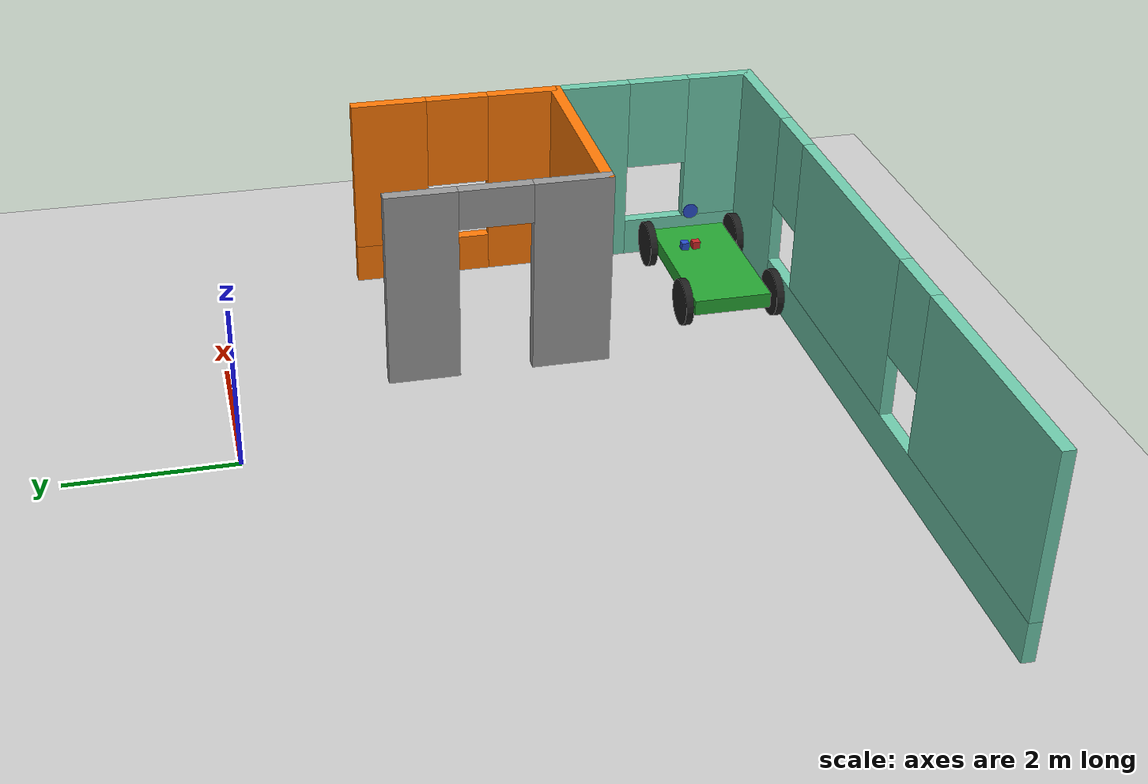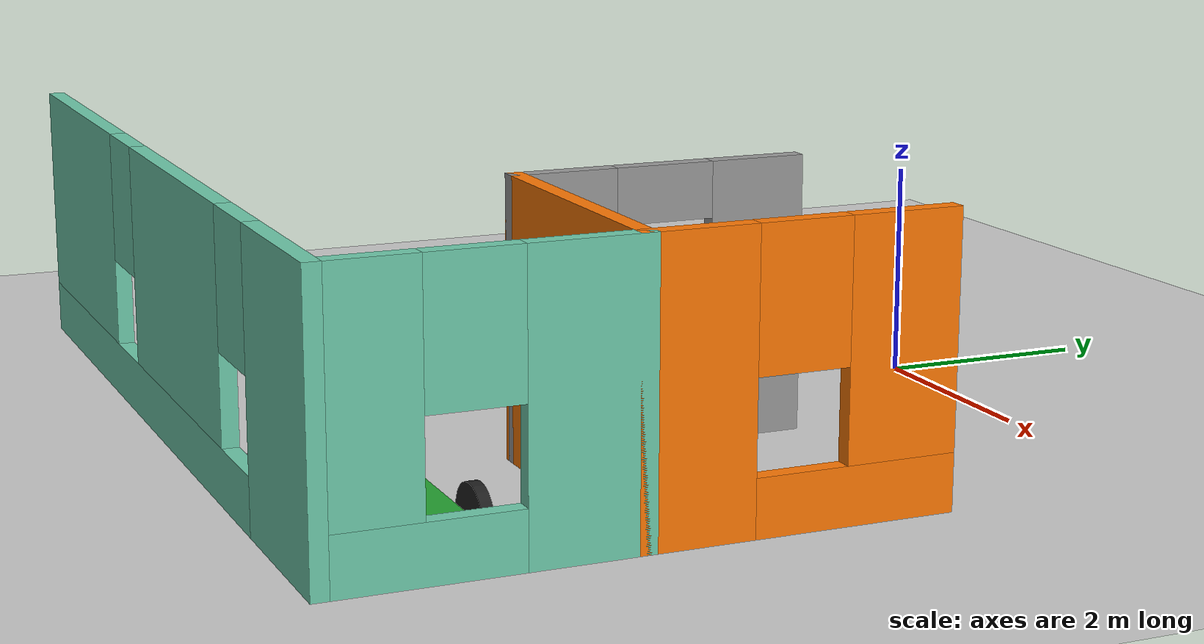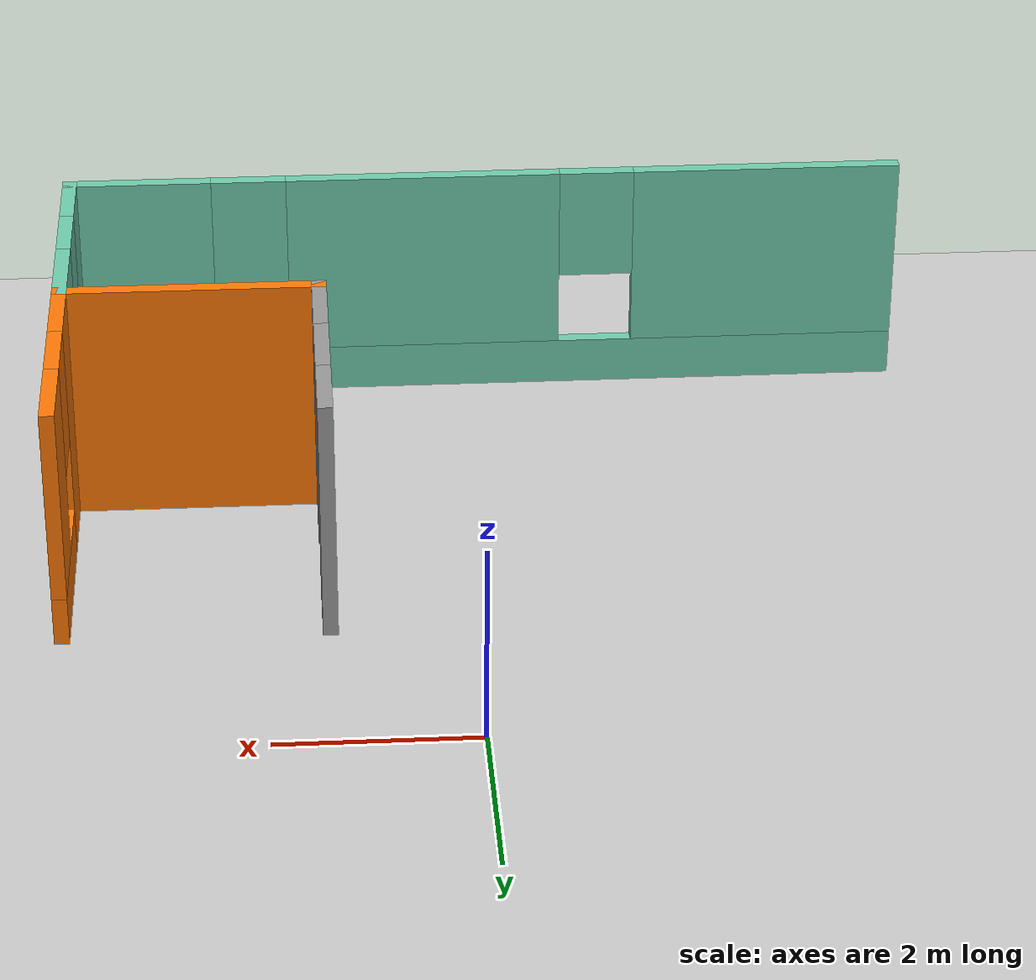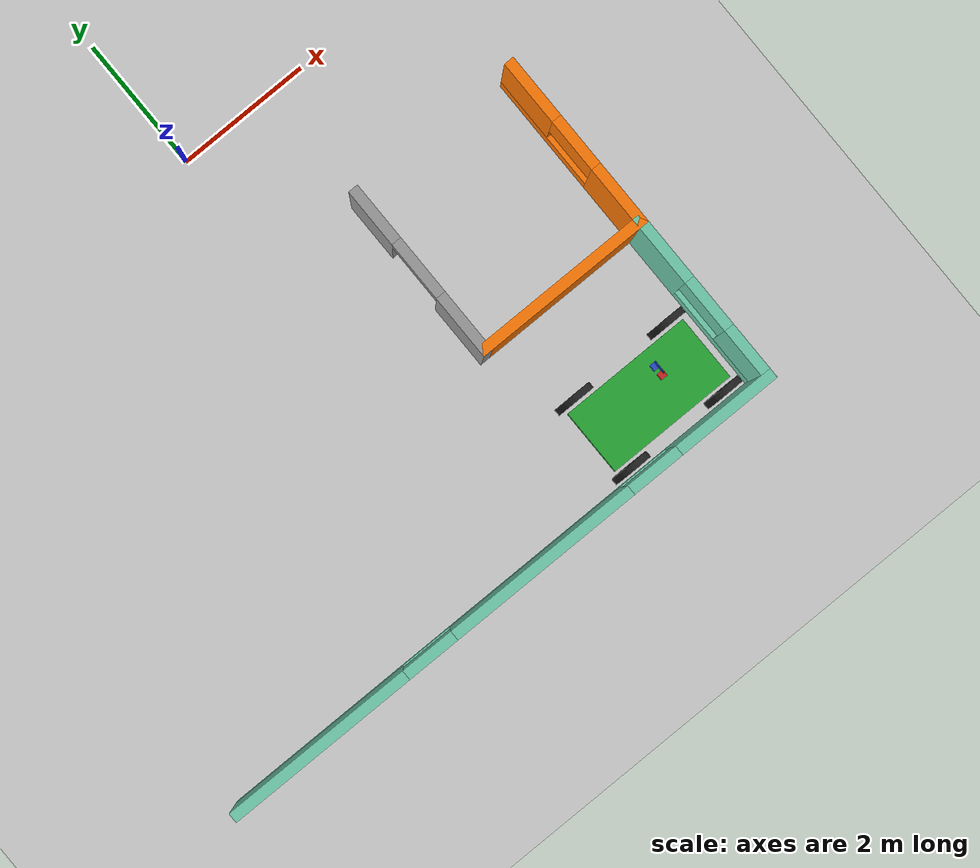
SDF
<sdf version="1.6">
 <world name="default">
  <model name="ground_plane">
   <static>1</static>
   <link name="link">
    <collision name="collision">
     <geometry><plane><normal>0 0 1</normal><size>100 100</size></plane></geometry>
     <surface>
      <contact><collide_bitmask>65535</collide_bitmask></contact>
      <friction><ode><mu>100</mu><mu2>50</mu2></ode></friction>
     </surface>
    </collision>
    <visual name="visual">
     <cast_shadows>0</cast_shadows>
     <geometry><plane><normal>0 0 1</normal><size>100 100</size></plane></geometry>
     <material>
      <script><uri>file://media/materials/scripts/gazebo.material</uri><name>Gazebo/Grey</name></script>
     </material>
    </visual>
   </link>
  </model>
  <model name="car">
   <link name="chassis">
    <pose>0 0 0.3 0 -0 0</pose>
    <collision name="collision"><geometry><box><size>2 1 0.2</size></box></geometry></collision>
    <visual name="visual">
     <geometry><box><size>2 1 0.2</size></box></geometry>
     <material>
      <script><uri>file://media/materials/scripts/gazebo.material</uri><name>Gazebo/Green</name></script>
     </material>
    </visual>
    <inertial>
     <inertia><ixx>1</ixx><ixy>0</ixy><ixz>0</ixz><iyy>1</iyy><iyz>0</iyz><izz>1</izz></inertia>
     <mass>1</mass>
    </inertial>
   </link>
   <link name="front_left_wheel">
    <pose>0.8 0.6 0.3 -0 1.5707 1.5707</pose>
    <collision name="collision">
     <geometry><cylinder><radius>0.3</radius><length>0.1</length></cylinder></geometry>
    </collision>
    <visual name="visual">
     <geometry><cylinder><radius>0.3</radius><length>0.1</length></cylinder></geometry>
     <material>
      <script><uri>file://media/materials/scripts/gazebo.material</uri><name>Gazebo/Black</name></script>
     </material>
    </visual>
    <inertial>
     <inertia><ixx>1</ixx><ixy>0</ixy><ixz>0</ixz><iyy>1</iyy><iyz>0</iyz><izz>1</izz></inertia>
     <mass>1</mass>
    </inertial>
   </link>
   <link name="front_right_wheel">
    <pose>0.8 -0.6 0.3 -0 1.5707 1.5707</pose>
    <collision name="collision">
     <geometry><cylinder><radius>0.3</radius><length>0.1</length></cylinder></geometry>
    </collision>
    <visual name="visual">
     <geometry><cylinder><radius>0.3</radius><length>0.1</length></cylinder></geometry>
     <material>
      <script><uri>file://media/materials/scripts/gazebo.material</uri><name>Gazebo/Black</name></script>
     </material>
    </visual>
    <inertial>
     <inertia><ixx>1</ixx><ixy>0</ixy><ixz>0</ixz><iyy>1</iyy><iyz>0</iyz><izz>1</izz></inertia>
     <mass>1</mass>
    </inertial>
   </link>
   <link name="back_right_wheel">
    <pose>-0.8 -0.6 0.3 -0 1.5707 1.5707</pose>
    <collision name="collision">
     <geometry><cylinder><radius>0.3</radius><length>0.1</length></cylinder></geometry>
    </collision>
    <visual name="visual">
     <geometry><cylinder><radius>0.3</radius><length>0.1</length></cylinder></geometry>
     <material>
      <script><uri>file://media/materials/scripts/gazebo.material</uri><name>Gazebo/Black</name></script>
     </material>
    </visual>
    <inertial>
     <inertia><ixx>1</ixx><ixy>0</ixy><ixz>0</ixz><iyy>1</iyy><iyz>0</iyz><izz>1</izz></inertia>
     <mass>1</mass>
    </inertial>
   </link>
   <link name="back_left_wheel">
    <pose>-0.8 0.6 0.3 -0 1.5707 1.5707</pose>
    <collision name="collision">
     <geometry><cylinder><radius>0.3</radius><length>0.1</length></cylinder></geometry>
    </collision>
    <visual name="visual">
     <geometry><cylinder><radius>0.3</radius><length>0.1</length></cylinder></geometry>
     <material>
      <script><uri>file://media/materials/scripts/gazebo.material</uri><name>Gazebo/Black</name></script>
     </material>
    </visual>
    <inertial>
     <inertia><ixx>1</ixx><ixy>0</ixy><ixz>0</ixz><iyy>1</iyy><iyz>0</iyz><izz>1</izz></inertia>
     <mass>1</mass>
    </inertial>
   </link>
   <link name="gas_pedal">
    <pose>0.3 0.1 0.5 0 -0 0</pose>
    <collision name="collision"><geometry><box><size>0.1 0.1 0.1</size></box></geometry></collision>
    <visual name="visual">
     <geometry><box><size>0.1 0.1 0.1</size></box></geometry>
     <material>
      <script><uri>file://media/materials/scripts/gazebo.material</uri><name>Gazebo/Red</name></script>
     </material>
    </visual>
    <inertial>
     <inertia><ixx>1</ixx><ixy>0</ixy><ixz>0</ixz><iyy>1</iyy><iyz>0</iyz><izz>1</izz></inertia>
     <mass>1</mass>
    </inertial>
   </link>
   <link name="brake_pedal">
    <pose>0.3 0.25 0.5 0 -0 0</pose>
    <collision name="collision"><geometry><box><size>0.1 0.1 0.1</size></box></geometry></collision>
    <visual name="visual">
     <geometry><box><size>0.1 0.1 0.1</size></box></geometry>
     <material>
      <script><uri>file://media/materials/scripts/gazebo.material</uri><name>Gazebo/Blue</name></script>
     </material>
    </visual>
    <inertial>
     <inertia><ixx>1</ixx><ixy>0</ixy><ixz>0</ixz><iyy>1</iyy><iyz>0</iyz><izz>1</izz></inertia>
     <mass>1</mass>
    </inertial>
   </link>
   <link name="steering_wheel">
    <pose>0.3 0.2 1 0 1.5707 0</pose>
    <collision name="collision">
     <geometry><cylinder><radius>0.1</radius><length>0.01</length></cylinder></geometry>
    </collision>
    <visual name="visual">
     <geometry><cylinder><radius>0.1</radius><length>0.01</length></cylinder></geometry>
     <material>
      <script><uri>file://media/materials/scripts/gazebo.material</uri><name>Gazebo/Blue</name></script>
     </material>
    </visual>
    <inertial>
     <inertia><ixx>1</ixx><ixy>0</ixy><ixz>0</ixz><iyy>1</iyy><iyz>0</iyz><izz>1</izz></inertia>
     <mass>1</mass>
    </inertial>
   </link>
   <joint name="gas_joint" type="prismatic">
    <parent>chassis</parent>
    <child>gas_pedal</child>
    <axis>
     <xyz>1 0 0</xyz>
     <limit><lower>0</lower><upper>0.2</upper></limit>
     <use_parent_model_frame>1</use_parent_model_frame>
     <dynamics><spring_reference>0</spring_reference><spring_stiffness>0</spring_stiffness></dynamics>
    </axis>
   </joint>
   <joint name="brake_joint" type="prismatic">
    <parent>chassis</parent>
    <child>brake_pedal</child>
    <axis>
     <xyz>1 0 0</xyz>
     <limit><lower>0</lower><upper>0.2</upper></limit>
     <use_parent_model_frame>1</use_parent_model_frame>
     <dynamics><spring_reference>0</spring_reference><spring_stiffness>0</spring_stiffness></dynamics>
    </axis>
   </joint>
   <joint name="steering_joint" type="revolute">
    <parent>chassis</parent>
    <child>steering_wheel</child>
    <axis>
     <xyz>1 0 0</xyz>
     <limit><lower>-7.853</lower><upper>7.853</upper></limit>
     <use_parent_model_frame>1</use_parent_model_frame>
     <dynamics><spring_reference>0</spring_reference><spring_stiffness>0</spring_stiffness></dynamics>
    </axis>
   </joint>
   <joint name="front_left_joint" type="revolute2">
    <parent>chassis</parent>
    <child>front_left_wheel</child>
    <axis>
     <xyz>0 0 1</xyz>
     <limit><lower>8.63568e-06</lower><upper>8.63568e-06</upper></limit>
     <use_parent_model_frame>1</use_parent_model_frame>
     <dynamics><spring_reference>0</spring_reference><spring_stiffness>0</spring_stiffness></dynamics>
    </axis>
    <axis2>
     <xyz>0 1 0</xyz>
     <use_parent_model_frame>1</use_parent_model_frame>
     <dynamics><spring_reference>0</spring_reference><spring_stiffness>0</spring_stiffness></dynamics>
    </axis2>
    <physics><ode><limit><cfm>0</cfm><erp>0.9</erp></limit></ode></physics>
   </joint>
   <joint name="front_right_joint" type="revolute2">
    <parent>chassis</parent>
    <child>front_right_wheel</child>
    <axis>
     <xyz>0 0 1</xyz>
     <limit><lower>8.63568e-06</lower><upper>8.63568e-06</upper></limit>
     <use_parent_model_frame>1</use_parent_model_frame>
     <dynamics><spring_reference>0</spring_reference><spring_stiffness>0</spring_stiffness></dynamics>
    </axis>
    <axis2>
     <xyz>0 1 0</xyz>
     <use_parent_model_frame>1</use_parent_model_frame>
     <dynamics><spring_reference>0</spring_reference><spring_stiffness>0</spring_stiffness></dynamics>
    </axis2>
    <physics><ode><limit><cfm>0</cfm><erp>0.9</erp></limit></ode></physics>
   </joint>
   <joint name="back_right_joint" type="revolute2">
    <parent>chassis</parent>
    <child>back_right_wheel</child>
    <axis>
     <xyz>0 0 1</xyz>
     <limit><lower>0</lower><upper>0</upper></limit>
     <use_parent_model_frame>1</use_parent_model_frame>
     <dynamics><spring_reference>0</spring_reference><spring_stiffness>0</spring_stiffness></dynamics>
    </axis>
    <axis2>
     <xyz>0 1 0</xyz>
     <use_parent_model_frame>1</use_parent_model_frame>
     <dynamics><spring_reference>0</spring_reference><spring_stiffness>0</spring_stiffness></dynamics>
    </axis2>
    <physics><ode><limit><cfm>0</cfm><erp>0.9</erp></limit></ode></physics>
   </joint>
   <joint name="back_left_joint" type="revolute2">
    <parent>chassis</parent>
    <child>back_left_wheel</child>
    <axis>
     <xyz>0 0 1</xyz>
     <limit><lower>0</lower><upper>0</upper></limit>
     <use_parent_model_frame>1</use_parent_model_frame>
     <dynamics><spring_reference>0</spring_reference><spring_stiffness>0</spring_stiffness></dynamics>
    </axis>
    <axis2>
     <xyz>0 1 0</xyz>
     <use_parent_model_frame>1</use_parent_model_frame>
     <dynamics><spring_reference>0</spring_reference><spring_stiffness>0</spring_stiffness></dynamics>
    </axis2>
    <physics><ode><limit><cfm>0</cfm><erp>0.9</erp></limit></ode></physics>
   </joint>
   <plugin name="vehicle" filename="libVehiclePlugin.so">
    <front_left>front_left_joint</front_left>
    <front_right>front_right_joint</front_right>
    <back_left>back_left_joint</back_left>
    <back_right>back_right_joint</back_right>
    <gas>gas_joint</gas>
    <brake>brake_joint</brake>
    <steering>steering_joint</steering>
    <front_power>10</front_power>
    <rear_power>10</rear_power>
    <tire_angle_range>0.5</tire_angle_range>
    <max_speed>10</max_speed>
    <aero_load>0.1</aero_load>
   </plugin>
   <pose>2.79488 -6.40236 -0.003308 -0.000272 0.00092 0.000531</pose>
  </model>
  <model name="someHouse">
   <link name="Wall_24">
    <pose>3.375 -1.55 0 0 -0 0</pose>
    <visual name="Wall_24_Visual">
     <pose>0 0 1.25 0 -0 0</pose>
     <geometry><box><size>2.75 0.15 2.5</size></box></geometry>
     <material>
      <script><uri>file://media/materials/scripts/gazebo.material</uri><name>Gazebo/Grey</name></script>
      <ambient>0.996078 0.47451 0.0196078 1</ambient>
      <shader type="pixel"/>
      <diffuse>0.7 0.7 0.7 1</diffuse>
      <specular>0.01 0.01 0.01 1</specular>
      <emissive>0 0 0 1</emissive>
     </material>
     <meta><layer>0</layer></meta>
    </visual>
    <collision name="Wall_24_Collision">
     <pose>0 0 1.25 0 -0 0</pose>
     <geometry><box><size>2.75 0.15 2.5</size></box></geometry>
     <surface>
      <friction>
       <ode><mu>1</mu><mu2>1</mu2><fdir1>0 0 0</fdir1><slip1>0</slip1><slip2>0</slip2></ode>
       <torsional>
        <coefficient>1</coefficient>
        <patch_radius>0</patch_radius>
        <surface_radius>0</surface_radius>
        <use_patch_radius>1</use_patch_radius>
        <ode><slip>0</slip></ode>
       </torsional>
      </friction>
      <bounce><restitution_coefficient>0</restitution_coefficient><threshold>1e+06</threshold></bounce>
      <contact>
       <collide_without_contact>0</collide_without_contact>
       <collide_without_contact_bitmask>1</collide_without_contact_bitmask>
       <collide_bitmask>1</collide_bitmask>
       <ode>
        <soft_cfm>0</soft_cfm>
        <soft_erp>0.2</soft_erp>
        <kp>1e+13</kp>
        <kd>1</kd>
        <max_vel>0.01</max_vel>
        <min_depth>0</min_depth>
       </ode>
       <bullet>
        <split_impulse>1</split_impulse>
        <split_impulse_penetration_threshold>-0.01</split_impulse_penetration_threshold>
        <soft_cfm>0</soft_cfm>
        <soft_erp>0.2</soft_erp>
        <kp>1e+13</kp>
        <kd>1</kd>
       </bullet>
      </contact>
     </surface>
    </collision>
   </link>
   <link name="Wall_25">
    <pose>4.675 -0.25 0 0 -0 1.5708</pose>
    <visual name="Wall_25_Visual_0">
     <pose>-0.884286 0 1.25 0 -0 0</pose>
     <geometry><box><size>0.981427 0.15 2.5</size></box></geometry>
     <material>
      <script><uri>file://media/materials/scripts/gazebo.material</uri><name>Gazebo/Grey</name></script>
      <ambient>0.996078 0.47451 0.0196078 1</ambient>
      <shader type="pixel"/>
      <diffuse>0.7 0.7 0.7 1</diffuse>
      <specular>0.01 0.01 0.01 1</specular>
      <emissive>0 0 0 1</emissive>
     </material>
     <meta><layer>0</layer></meta>
    </visual>
    <visual name="Wall_25_Visual_1">
     <pose>0.490714 0 0.25 0 -0 0</pose>
     <geometry><box><size>1.76857 0.15 0.5</size></box></geometry>
     <material>
      <script><uri>file://media/materials/scripts/gazebo.material</uri><name>Gazebo/Grey</name></script>
      <ambient>0.996078 0.47451 0.0196078 1</ambient>
      <shader type="pixel"/>
      <diffuse>0.7 0.7 0.7 1</diffuse>
      <specular>0.01 0.01 0.01 1</specular>
      <emissive>0 0 0 1</emissive>
     </material>
     <meta><layer>0</layer></meta>
    </visual>
    <visual name="Wall_25_Visual_2">
     <pose>0.890714 0 1.5 0 -0 0</pose>
     <geometry><box><size>0.968573 0.15 2</size></box></geometry>
     <material>
      <script><uri>file://media/materials/scripts/gazebo.material</uri><name>Gazebo/Grey</name></script>
      <ambient>0.996078 0.47451 0.0196078 1</ambient>
      <shader type="pixel"/>
      <diffuse>0.7 0.7 0.7 1</diffuse>
      <specular>0.01 0.01 0.01 1</specular>
      <emissive>0 0 0 1</emissive>
     </material>
     <meta><layer>0</layer></meta>
    </visual>
    <visual name="Wall_25_Visual_3">
     <pose>0.006427 0 1.9 0 -0 0</pose>
     <geometry><box><size>0.8 0.15 1.2</size></box></geometry>
     <material>
      <script><uri>file://media/materials/scripts/gazebo.material</uri><name>Gazebo/Grey</name></script>
      <ambient>0.996078 0.47451 0.0196078 1</ambient>
      <shader type="pixel"/>
      <diffuse>0.7 0.7 0.7 1</diffuse>
      <specular>0.01 0.01 0.01 1</specular>
      <emissive>0 0 0 1</emissive>
     </material>
     <meta><layer>0</layer></meta>
    </visual>
    <collision name="Wall_25_Collision_0">
     <pose>-0.884286 0 1.25 0 -0 0</pose>
     <geometry><box><size>0.981427 0.15 2.5</size></box></geometry>
     <surface>
      <friction>
       <ode><mu>1</mu><mu2>1</mu2><fdir1>0 0 0</fdir1><slip1>0</slip1><slip2>0</slip2></ode>
       <torsional>
        <coefficient>1</coefficient>
        <patch_radius>0</patch_radius>
        <surface_radius>0</surface_radius>
        <use_patch_radius>1</use_patch_radius>
        <ode><slip>0</slip></ode>
       </torsional>
      </friction>
      <bounce><restitution_coefficient>0</restitution_coefficient><threshold>1e+06</threshold></bounce>
      <contact>
       <collide_without_contact>0</collide_without_contact>
       <collide_without_contact_bitmask>1</collide_without_contact_bitmask>
       <collide_bitmask>1</collide_bitmask>
       <ode>
        <soft_cfm>0</soft_cfm>
        <soft_erp>0.2</soft_erp>
        <kp>1e+13</kp>
        <kd>1</kd>
        <max_vel>0.01</max_vel>
        <min_depth>0</min_depth>
       </ode>
       <bullet>
        <split_impulse>1</split_impulse>
        <split_impulse_penetration_threshold>-0.01</split_impulse_penetration_threshold>
        <soft_cfm>0</soft_cfm>
        <soft_erp>0.2</soft_erp>
        <kp>1e+13</kp>
        <kd>1</kd>
       </bullet>
      </contact>
     </surface>
    </collision>
    <collision name="Wall_25_Collision_1">
     <pose>0.490714 0 0.25 0 -0 0</pose>
     <geometry><box><size>1.76857 0.15 0.5</size></box></geometry>
     <surface>
      <friction>
       <ode><mu>1</mu><mu2>1</mu2><fdir1>0 0 0</fdir1><slip1>0</slip1><slip2>0</slip2></ode>
       <torsional>
        <coefficient>1</coefficient>
        <patch_radius>0</patch_radius>
        <surface_radius>0</surface_radius>
        <use_patch_radius>1</use_patch_radius>
        <ode><slip>0</slip></ode>
       </torsional>
      </friction>
      <bounce><restitution_coefficient>0</restitution_coefficient><threshold>1e+06</threshold></bounce>
      <contact>
       <collide_without_contact>0</collide_without_contact>
       <collide_without_contact_bitmask>1</collide_without_contact_bitmask>
       <collide_bitmask>1</collide_bitmask>
       <ode>
        <soft_cfm>0</soft_cfm>
        <soft_erp>0.2</soft_erp>
        <kp>1e+13</kp>
        <kd>1</kd>
        <max_vel>0.01</max_vel>
        <min_depth>0</min_depth>
       </ode>
       <bullet>
        <split_impulse>1</split_impulse>
        <split_impulse_penetration_threshold>-0.01</split_impulse_penetration_threshold>
        <soft_cfm>0</soft_cfm>
        <soft_erp>0.2</soft_erp>
        <kp>1e+13</kp>
        <kd>1</kd>
       </bullet>
      </contact>
     </surface>
    </collision>
    <collision name="Wall_25_Collision_2">
     <pose>0.890714 0 1.5 0 -0 0</pose>
     <geometry><box><size>0.968573 0.15 2</size></box></geometry>
     <surface>
      <friction>
       <ode><mu>1</mu><mu2>1</mu2><fdir1>0 0 0</fdir1><slip1>0</slip1><slip2>0</slip2></ode>
       <torsional>
        <coefficient>1</coefficient>
        <patch_radius>0</patch_radius>
        <surface_radius>0</surface_radius>
        <use_patch_radius>1</use_patch_radius>
        <ode><slip>0</slip></ode>
       </torsional>
      </friction>
      <bounce><restitution_coefficient>0</restitution_coefficient><threshold>1e+06</threshold></bounce>
      <contact>
       <collide_without_contact>0</collide_without_contact>
       <collide_without_contact_bitmask>1</collide_without_contact_bitmask>
       <collide_bitmask>1</collide_bitmask>
       <ode>
        <soft_cfm>0</soft_cfm>
        <soft_erp>0.2</soft_erp>
        <kp>1e+13</kp>
        <kd>1</kd>
        <max_vel>0.01</max_vel>
        <min_depth>0</min_depth>
       </ode>
       <bullet>
        <split_impulse>1</split_impulse>
        <split_impulse_penetration_threshold>-0.01</split_impulse_penetration_threshold>
        <soft_cfm>0</soft_cfm>
        <soft_erp>0.2</soft_erp>
        <kp>1e+13</kp>
        <kd>1</kd>
       </bullet>
      </contact>
     </surface>
    </collision>
    <collision name="Wall_25_Collision_3">
     <pose>0.006427 0 1.9 0 -0 0</pose>
     <geometry><box><size>0.8 0.15 1.2</size></box></geometry>
     <surface>
      <friction>
       <ode><mu>1</mu><mu2>1</mu2><fdir1>0 0 0</fdir1><slip1>0</slip1><slip2>0</slip2></ode>
       <torsional>
        <coefficient>1</coefficient>
        <patch_radius>0</patch_radius>
        <surface_radius>0</surface_radius>
        <use_patch_radius>1</use_patch_radius>
        <ode><slip>0</slip></ode>
       </torsional>
      </friction>
      <bounce><restitution_coefficient>0</restitution_coefficient><threshold>1e+06</threshold></bounce>
      <contact>
       <collide_without_contact>0</collide_without_contact>
       <collide_without_contact_bitmask>1</collide_without_contact_bitmask>
       <collide_bitmask>1</collide_bitmask>
       <ode>
        <soft_cfm>0</soft_cfm>
        <soft_erp>0.2</soft_erp>
        <kp>1e+13</kp>
        <kd>1</kd>
        <max_vel>0.01</max_vel>
        <min_depth>0</min_depth>
       </ode>
       <bullet>
        <split_impulse>1</split_impulse>
        <split_impulse_penetration_threshold>-0.01</split_impulse_penetration_threshold>
        <soft_cfm>0</soft_cfm>
        <soft_erp>0.2</soft_erp>
        <kp>1e+13</kp>
        <kd>1</kd>
       </bullet>
      </contact>
     </surface>
    </collision>
   </link>
   <link name="Wall_30">
    <pose>2.075 -0.25 0 0 0 -1.5708</pose>
    <visual name="Wall_30_Visual_0">
     <pose>-0.934617 0 1.25 0 -0 0</pose>
     <geometry><box><size>0.880765 0.15 2.5</size></box></geometry>
     <material>
      <script><uri>file://media/materials/scripts/gazebo.material</uri><name>Gazebo/Grey</name></script>
      <ambient>1 1 1 1</ambient>
      <shader type="pixel"/>
      <diffuse>0.7 0.7 0.7 1</diffuse>
      <specular>0.01 0.01 0.01 1</specular>
      <emissive>0 0 0 1</emissive>
     </material>
     <meta><layer>0</layer></meta>
    </visual>
    <visual name="Wall_30_Visual_1">
     <pose>0.890383 0 1.25 0 -0 0</pose>
     <geometry><box><size>0.969235 0.15 2.5</size></box></geometry>
     <material>
      <script><uri>file://media/materials/scripts/gazebo.material</uri><name>Gazebo/Grey</name></script>
      <ambient>1 1 1 1</ambient>
      <shader type="pixel"/>
      <diffuse>0.7 0.7 0.7 1</diffuse>
      <specular>0.01 0.01 0.01 1</specular>
      <emissive>0 0 0 1</emissive>
     </material>
     <meta><layer>0</layer></meta>
    </visual>
    <visual name="Wall_30_Visual_2">
     <pose>-0.044235 0 2.25 0 -0 0</pose>
     <geometry><box><size>0.9 0.15 0.5</size></box></geometry>
     <material>
      <script><uri>file://media/materials/scripts/gazebo.material</uri><name>Gazebo/Grey</name></script>
      <ambient>1 1 1 1</ambient>
      <shader type="pixel"/>
      <diffuse>0.7 0.7 0.7 1</diffuse>
      <specular>0.01 0.01 0.01 1</specular>
      <emissive>0 0 0 1</emissive>
     </material>
     <meta><layer>0</layer></meta>
    </visual>
    <collision name="Wall_30_Collision_0">
     <pose>-0.934617 0 1.25 0 -0 0</pose>
     <geometry><box><size>0.880765 0.15 2.5</size></box></geometry>
     <surface>
      <friction>
       <ode><mu>1</mu><mu2>1</mu2><fdir1>0 0 0</fdir1><slip1>0</slip1><slip2>0</slip2></ode>
       <torsional>
        <coefficient>1</coefficient>
        <patch_radius>0</patch_radius>
        <surface_radius>0</surface_radius>
        <use_patch_radius>1</use_patch_radius>
        <ode><slip>0</slip></ode>
       </torsional>
      </friction>
      <bounce><restitution_coefficient>0</restitution_coefficient><threshold>1e+06</threshold></bounce>
      <contact>
       <collide_without_contact>0</collide_without_contact>
       <collide_without_contact_bitmask>1</collide_without_contact_bitmask>
       <collide_bitmask>1</collide_bitmask>
       <ode>
        <soft_cfm>0</soft_cfm>
        <soft_erp>0.2</soft_erp>
        <kp>1e+13</kp>
        <kd>1</kd>
        <max_vel>0.01</max_vel>
        <min_depth>0</min_depth>
       </ode>
       <bullet>
        <split_impulse>1</split_impulse>
        <split_impulse_penetration_threshold>-0.01</split_impulse_penetration_threshold>
        <soft_cfm>0</soft_cfm>
        <soft_erp>0.2</soft_erp>
        <kp>1e+13</kp>
        <kd>1</kd>
       </bullet>
      </contact>
     </surface>
    </collision>
    <collision name="Wall_30_Collision_1">
     <pose>0.890383 0 1.25 0 -0 0</pose>
     <geometry><box><size>0.969235 0.15 2.5</size></box></geometry>
     <surface>
      <friction>
       <ode><mu>1</mu><mu2>1</mu2><fdir1>0 0 0</fdir1><slip1>0</slip1><slip2>0</slip2></ode>
       <torsional>
        <coefficient>1</coefficient>
        <patch_radius>0</patch_radius>
        <surface_radius>0</surface_radius>
        <use_patch_radius>1</use_patch_radius>
        <ode><slip>0</slip></ode>
       </torsional>
      </friction>
      <bounce><restitution_coefficient>0</restitution_coefficient><threshold>1e+06</threshold></bounce>
      <contact>
       <collide_without_contact>0</collide_without_contact>
       <collide_without_contact_bitmask>1</collide_without_contact_bitmask>
       <collide_bitmask>1</collide_bitmask>
       <ode>
        <soft_cfm>0</soft_cfm>
        <soft_erp>0.2</soft_erp>
        <kp>1e+13</kp>
        <kd>1</kd>
        <max_vel>0.01</max_vel>
        <min_depth>0</min_depth>
       </ode>
       <bullet>
        <split_impulse>1</split_impulse>
        <split_impulse_penetration_threshold>-0.01</split_impulse_penetration_threshold>
        <soft_cfm>0</soft_cfm>
        <soft_erp>0.2</soft_erp>
        <kp>1e+13</kp>
        <kd>1</kd>
       </bullet>
      </contact>
     </surface>
    </collision>
    <collision name="Wall_30_Collision_2">
     <pose>-0.044235 0 2.25 0 -0 0</pose>
     <geometry><box><size>0.9 0.15 0.5</size></box></geometry>
     <surface>
      <friction>
       <ode><mu>1</mu><mu2>1</mu2><fdir1>0 0 0</fdir1><slip1>0</slip1><slip2>0</slip2></ode>
       <torsional>
        <coefficient>1</coefficient>
        <patch_radius>0</patch_radius>
        <surface_radius>0</surface_radius>
        <use_patch_radius>1</use_patch_radius>
        <ode><slip>0</slip></ode>
       </torsional>
      </friction>
      <bounce><restitution_coefficient>0</restitution_coefficient><threshold>1e+06</threshold></bounce>
      <contact>
       <collide_without_contact>0</collide_without_contact>
       <collide_without_contact_bitmask>1</collide_without_contact_bitmask>
       <collide_bitmask>1</collide_bitmask>
       <ode>
        <soft_cfm>0</soft_cfm>
        <soft_erp>0.2</soft_erp>
        <kp>1e+13</kp>
        <kd>1</kd>
        <max_vel>0.01</max_vel>
        <min_depth>0</min_depth>
       </ode>
       <bullet>
        <split_impulse>1</split_impulse>
        <split_impulse_penetration_threshold>-0.01</split_impulse_penetration_threshold>
        <soft_cfm>0</soft_cfm>
        <soft_erp>0.2</soft_erp>
        <kp>1e+13</kp>
        <kd>1</kd>
       </bullet>
      </contact>
     </surface>
    </collision>
   </link>
   <link name="Wall_45">
    <pose>4.675 -2.85 0 0 0 -1.5708</pose>
    <visual name="Wall_45_Visual_0">
     <pose>-0.844365 0 1.25 0 -0 0</pose>
     <geometry><box><size>1.06127 0.15 2.5</size></box></geometry>
     <material>
      <script><uri>file://media/materials/scripts/gazebo.material</uri><name>Gazebo/Grey</name></script>
      <ambient>0.435294 0.796078 0.67451 1</ambient>
      <shader type="pixel"/>
      <diffuse>0.7 0.7 0.7 1</diffuse>
      <specular>0.01 0.01 0.01 1</specular>
      <emissive>0 0 0 1</emissive>
     </material>
     <meta><layer>0</layer></meta>
    </visual>
    <visual name="Wall_45_Visual_1">
     <pose>0.530635 0 0.25 0 -0 0</pose>
     <geometry><box><size>1.68873 0.15 0.5</size></box></geometry>
     <material>
      <script><uri>file://media/materials/scripts/gazebo.material</uri><name>Gazebo/Grey</name></script>
      <ambient>0.435294 0.796078 0.67451 1</ambient>
      <shader type="pixel"/>
      <diffuse>0.7 0.7 0.7 1</diffuse>
      <specular>0.01 0.01 0.01 1</specular>
      <emissive>0 0 0 1</emissive>
     </material>
     <meta><layer>0</layer></meta>
    </visual>
    <visual name="Wall_45_Visual_2">
     <pose>0.930635 0 1.5 0 -0 0</pose>
     <geometry><box><size>0.88873 0.15 2</size></box></geometry>
     <material>
      <script><uri>file://media/materials/scripts/gazebo.material</uri><name>Gazebo/Grey</name></script>
      <ambient>0.435294 0.796078 0.67451 1</ambient>
      <shader type="pixel"/>
      <diffuse>0.7 0.7 0.7 1</diffuse>
      <specular>0.01 0.01 0.01 1</specular>
      <emissive>0 0 0 1</emissive>
     </material>
     <meta><layer>0</layer></meta>
    </visual>
    <visual name="Wall_45_Visual_3">
     <pose>0.08627 0 1.9 0 -0 0</pose>
     <geometry><box><size>0.8 0.15 1.2</size></box></geometry>
     <material>
      <script><uri>file://media/materials/scripts/gazebo.material</uri><name>Gazebo/Grey</name></script>
      <ambient>0.435294 0.796078 0.67451 1</ambient>
      <shader type="pixel"/>
      <diffuse>0.7 0.7 0.7 1</diffuse>
      <specular>0.01 0.01 0.01 1</specular>
      <emissive>0 0 0 1</emissive>
     </material>
     <meta><layer>0</layer></meta>
    </visual>
    <collision name="Wall_45_Collision_0">
     <pose>-0.844365 0 1.25 0 -0 0</pose>
     <geometry><box><size>1.06127 0.15 2.5</size></box></geometry>
     <surface>
      <friction>
       <ode><mu>1</mu><mu2>1</mu2><fdir1>0 0 0</fdir1><slip1>0</slip1><slip2>0</slip2></ode>
       <torsional>
        <coefficient>1</coefficient>
        <patch_radius>0</patch_radius>
        <surface_radius>0</surface_radius>
        <use_patch_radius>1</use_patch_radius>
        <ode><slip>0</slip></ode>
       </torsional>
      </friction>
      <bounce><restitution_coefficient>0</restitution_coefficient><threshold>1e+06</threshold></bounce>
      <contact>
       <collide_without_contact>0</collide_without_contact>
       <collide_without_contact_bitmask>1</collide_without_contact_bitmask>
       <collide_bitmask>1</collide_bitmask>
       <ode>
        <soft_cfm>0</soft_cfm>
        <soft_erp>0.2</soft_erp>
        <kp>1e+13</kp>
        <kd>1</kd>
        <max_vel>0.01</max_vel>
        <min_depth>0</min_depth>
       </ode>
       <bullet>
        <split_impulse>1</split_impulse>
        <split_impulse_penetration_threshold>-0.01</split_impulse_penetration_threshold>
        <soft_cfm>0</soft_cfm>
        <soft_erp>0.2</soft_erp>
        <kp>1e+13</kp>
        <kd>1</kd>
       </bullet>
      </contact>
     </surface>
    </collision>
    <collision name="Wall_45_Collision_1">
     <pose>0.530635 0 0.25 0 -0 0</pose>
     <geometry><box><size>1.68873 0.15 0.5</size></box></geometry>
     <surface>
      <friction>
       <ode><mu>1</mu><mu2>1</mu2><fdir1>0 0 0</fdir1><slip1>0</slip1><slip2>0</slip2></ode>
       <torsional>
        <coefficient>1</coefficient>
        <patch_radius>0</patch_radius>
        <surface_radius>0</surface_radius>
        <use_patch_radius>1</use_patch_radius>
        <ode><slip>0</slip></ode>
       </torsional>
      </friction>
      <bounce><restitution_coefficient>0</restitution_coefficient><threshold>1e+06</threshold></bounce>
      <contact>
       <collide_without_contact>0</collide_without_contact>
       <collide_without_contact_bitmask>1</collide_without_contact_bitmask>
       <collide_bitmask>1</collide_bitmask>
       <ode>
        <soft_cfm>0</soft_cfm>
        <soft_erp>0.2</soft_erp>
        <kp>1e+13</kp>
        <kd>1</kd>
        <max_vel>0.01</max_vel>
        <min_depth>0</min_depth>
       </ode>
       <bullet>
        <split_impulse>1</split_impulse>
        <split_impulse_penetration_threshold>-0.01</split_impulse_penetration_threshold>
        <soft_cfm>0</soft_cfm>
        <soft_erp>0.2</soft_erp>
        <kp>1e+13</kp>
        <kd>1</kd>
       </bullet>
      </contact>
     </surface>
    </collision>
    <collision name="Wall_45_Collision_2">
     <pose>0.930635 0 1.5 0 -0 0</pose>
     <geometry><box><size>0.88873 0.15 2</size></box></geometry>
     <surface>
      <friction>
       <ode><mu>1</mu><mu2>1</mu2><fdir1>0 0 0</fdir1><slip1>0</slip1><slip2>0</slip2></ode>
       <torsional>
        <coefficient>1</coefficient>
        <patch_radius>0</patch_radius>
        <surface_radius>0</surface_radius>
        <use_patch_radius>1</use_patch_radius>
        <ode><slip>0</slip></ode>
       </torsional>
      </friction>
      <bounce><restitution_coefficient>0</restitution_coefficient><threshold>1e+06</threshold></bounce>
      <contact>
       <collide_without_contact>0</collide_without_contact>
       <collide_without_contact_bitmask>1</collide_without_contact_bitmask>
       <collide_bitmask>1</collide_bitmask>
       <ode>
        <soft_cfm>0</soft_cfm>
        <soft_erp>0.2</soft_erp>
        <kp>1e+13</kp>
        <kd>1</kd>
        <max_vel>0.01</max_vel>
        <min_depth>0</min_depth>
       </ode>
       <bullet>
        <split_impulse>1</split_impulse>
        <split_impulse_penetration_threshold>-0.01</split_impulse_penetration_threshold>
        <soft_cfm>0</soft_cfm>
        <soft_erp>0.2</soft_erp>
        <kp>1e+13</kp>
        <kd>1</kd>
       </bullet>
      </contact>
     </surface>
    </collision>
    <collision name="Wall_45_Collision_3">
     <pose>0.08627 0 1.9 0 -0 0</pose>
     <geometry><box><size>0.8 0.15 1.2</size></box></geometry>
     <surface>
      <friction>
       <ode><mu>1</mu><mu2>1</mu2><fdir1>0 0 0</fdir1><slip1>0</slip1><slip2>0</slip2></ode>
       <torsional>
        <coefficient>1</coefficient>
        <patch_radius>0</patch_radius>
        <surface_radius>0</surface_radius>
        <use_patch_radius>1</use_patch_radius>
        <ode><slip>0</slip></ode>
       </torsional>
      </friction>
      <bounce><restitution_coefficient>0</restitution_coefficient><threshold>1e+06</threshold></bounce>
      <contact>
       <collide_without_contact>0</collide_without_contact>
       <collide_without_contact_bitmask>1</collide_without_contact_bitmask>
       <collide_bitmask>1</collide_bitmask>
       <ode>
        <soft_cfm>0</soft_cfm>
        <soft_erp>0.2</soft_erp>
        <kp>1e+13</kp>
        <kd>1</kd>
        <max_vel>0.01</max_vel>
        <min_depth>0</min_depth>
       </ode>
       <bullet>
        <split_impulse>1</split_impulse>
        <split_impulse_penetration_threshold>-0.01</split_impulse_penetration_threshold>
        <soft_cfm>0</soft_cfm>
        <soft_erp>0.2</soft_erp>
        <kp>1e+13</kp>
        <kd>1</kd>
       </bullet>
      </contact>
     </surface>
    </collision>
   </link>
   <link name="Wall_46">
    <pose>0.25 -4.15 0 0 -0 3.14159</pose>
    <visual name="Wall_46_Visual_0">
     <pose>-3.71177 0 1.25 0 -0 0</pose>
     <geometry><box><size>1.57647 0.15 2.5</size></box></geometry>
     <material>
      <script><uri>file://media/materials/scripts/gazebo.material</uri><name>Gazebo/Grey</name></script>
      <ambient>0.435294 0.796078 0.67451 1</ambient>
      <shader type="pixel"/>
      <diffuse>0.7 0.7 0.7 1</diffuse>
      <specular>0.01 0.01 0.01 1</specular>
      <emissive>0 0 0 1</emissive>
     </material>
     <meta><layer>0</layer></meta>
    </visual>
    <visual name="Wall_46_Visual_1">
     <pose>0.788235 0 0.25 0 -0 0</pose>
     <geometry><box><size>7.42353 0.15 0.5</size></box></geometry>
     <material>
      <script><uri>file://media/materials/scripts/gazebo.material</uri><name>Gazebo/Grey</name></script>
      <ambient>0.435294 0.796078 0.67451 1</ambient>
      <shader type="pixel"/>
      <diffuse>0.7 0.7 0.7 1</diffuse>
      <specular>0.01 0.01 0.01 1</specular>
      <emissive>0 0 0 1</emissive>
     </material>
     <meta><layer>0</layer></meta>
    </visual>
    <visual name="Wall_46_Visual_2">
     <pose>-0.652093 0 1.5 0 -0 0</pose>
     <geometry><box><size>2.94287 0.15 2</size></box></geometry>
     <material>
      <script><uri>file://media/materials/scripts/gazebo.material</uri><name>Gazebo/Grey</name></script>
      <ambient>0.435294 0.796078 0.67451 1</ambient>
      <shader type="pixel"/>
      <diffuse>0.7 0.7 0.7 1</diffuse>
      <specular>0.01 0.01 0.01 1</specular>
      <emissive>0 0 0 1</emissive>
     </material>
     <meta><layer>0</layer></meta>
    </visual>
    <visual name="Wall_46_Visual_3">
     <pose>3.05967 0 1.5 0 -0 0</pose>
     <geometry><box><size>2.88066 0.15 2</size></box></geometry>
     <material>
      <script><uri>file://media/materials/scripts/gazebo.material</uri><name>Gazebo/Grey</name></script>
      <ambient>0.435294 0.796078 0.67451 1</ambient>
      <shader type="pixel"/>
      <diffuse>0.7 0.7 0.7 1</diffuse>
      <specular>0.01 0.01 0.01 1</specular>
      <emissive>0 0 0 1</emissive>
     </material>
     <meta><layer>0</layer></meta>
    </visual>
    <visual name="Wall_46_Visual_4">
     <pose>-2.52353 0 1.9 0 -0 0</pose>
     <geometry><box><size>0.8 0.15 1.2</size></box></geometry>
     <material>
      <script><uri>file://media/materials/scripts/gazebo.material</uri><name>Gazebo/Grey</name></script>
      <ambient>0.435294 0.796078 0.67451 1</ambient>
      <shader type="pixel"/>
      <diffuse>0.7 0.7 0.7 1</diffuse>
      <specular>0.01 0.01 0.01 1</specular>
      <emissive>0 0 0 1</emissive>
     </material>
     <meta><layer>0</layer></meta>
    </visual>
    <visual name="Wall_46_Visual_5">
     <pose>1.21934 0 1.9 0 -0 0</pose>
     <geometry><box><size>0.8 0.15 1.2</size></box></geometry>
     <material>
      <script><uri>file://media/materials/scripts/gazebo.material</uri><name>Gazebo/Grey</name></script>
      <ambient>0.435294 0.796078 0.67451 1</ambient>
      <shader type="pixel"/>
      <diffuse>0.7 0.7 0.7 1</diffuse>
      <specular>0.01 0.01 0.01 1</specular>
      <emissive>0 0 0 1</emissive>
     </material>
     <meta><layer>0</layer></meta>
    </visual>
    <collision name="Wall_46_Collision_0">
     <pose>-3.71177 0 1.25 0 -0 0</pose>
     <geometry><box><size>1.57647 0.15 2.5</size></box></geometry>
     <surface>
      <friction>
       <ode><mu>1</mu><mu2>1</mu2><fdir1>0 0 0</fdir1><slip1>0</slip1><slip2>0</slip2></ode>
       <torsional>
        <coefficient>1</coefficient>
        <patch_radius>0</patch_radius>
        <surface_radius>0</surface_radius>
        <use_patch_radius>1</use_patch_radius>
        <ode><slip>0</slip></ode>
       </torsional>
      </friction>
      <bounce><restitution_coefficient>0</restitution_coefficient><threshold>1e+06</threshold></bounce>
      <contact>
       <collide_without_contact>0</collide_without_contact>
       <collide_without_contact_bitmask>1</collide_without_contact_bitmask>
       <collide_bitmask>1</collide_bitmask>
       <ode>
        <soft_cfm>0</soft_cfm>
        <soft_erp>0.2</soft_erp>
        <kp>1e+13</kp>
        <kd>1</kd>
        <max_vel>0.01</max_vel>
        <min_depth>0</min_depth>
       </ode>
       <bullet>
        <split_impulse>1</split_impulse>
        <split_impulse_penetration_threshold>-0.01</split_impulse_penetration_threshold>
        <soft_cfm>0</soft_cfm>
        <soft_erp>0.2</soft_erp>
        <kp>1e+13</kp>
        <kd>1</kd>
       </bullet>
      </contact>
     </surface>
    </collision>
    <collision name="Wall_46_Collision_1">
     <pose>0.788235 0 0.25 0 -0 0</pose>
     <geometry><box><size>7.42353 0.15 0.5</size></box></geometry>
     <surface>
      <friction>
       <ode><mu>1</mu><mu2>1</mu2><fdir1>0 0 0</fdir1><slip1>0</slip1><slip2>0</slip2></ode>
       <torsional>
        <coefficient>1</coefficient>
        <patch_radius>0</patch_radius>
        <surface_radius>0</surface_radius>
        <use_patch_radius>1</use_patch_radius>
        <ode><slip>0</slip></ode>
       </torsional>
      </friction>
      <bounce><restitution_coefficient>0</restitution_coefficient><threshold>1e+06</threshold></bounce>
      <contact>
       <collide_without_contact>0</collide_without_contact>
       <collide_without_contact_bitmask>1</collide_without_contact_bitmask>
       <collide_bitmask>1</collide_bitmask>
       <ode>
        <soft_cfm>0</soft_cfm>
        <soft_erp>0.2</soft_erp>
        <kp>1e+13</kp>
        <kd>1</kd>
        <max_vel>0.01</max_vel>
        <min_depth>0</min_depth>
       </ode>
       <bullet>
        <split_impulse>1</split_impulse>
        <split_impulse_penetration_threshold>-0.01</split_impulse_penetration_threshold>
        <soft_cfm>0</soft_cfm>
        <soft_erp>0.2</soft_erp>
        <kp>1e+13</kp>
        <kd>1</kd>
       </bullet>
      </contact>
     </surface>
    </collision>
    <collision name="Wall_46_Collision_3">
     <pose>3.05967 0 1.5 0 -0 0</pose>
     <geometry><box><size>2.88066 0.15 2</size></box></geometry>
     <surface>
      <friction>
       <ode><mu>1</mu><mu2>1</mu2><fdir1>0 0 0</fdir1><slip1>0</slip1><slip2>0</slip2></ode>
       <torsional>
        <coefficient>1</coefficient>
        <patch_radius>0</patch_radius>
        <surface_radius>0</surface_radius>
        <use_patch_radius>1</use_patch_radius>
        <ode><slip>0</slip></ode>
       </torsional>
      </friction>
      <bounce><restitution_coefficient>0</restitution_coefficient><threshold>1e+06</threshold></bounce>
      <contact>
       <collide_without_contact>0</collide_without_contact>
       <collide_without_contact_bitmask>1</collide_without_contact_bitmask>
       <collide_bitmask>1</collide_bitmask>
       <ode>
        <soft_cfm>0</soft_cfm>
        <soft_erp>0.2</soft_erp>
        <kp>1e+13</kp>
        <kd>1</kd>
        <max_vel>0.01</max_vel>
        <min_depth>0</min_depth>
       </ode>
       <bullet>
        <split_impulse>1</split_impulse>
        <split_impulse_penetration_threshold>-0.01</split_impulse_penetration_threshold>
        <soft_cfm>0</soft_cfm>
        <soft_erp>0.2</soft_erp>
        <kp>1e+13</kp>
        <kd>1</kd>
       </bullet>
      </contact>
     </surface>
    </collision>
    <collision name="Wall_46_Collision_2">
     <pose>-0.652093 0 1.5 0 -0 0</pose>
     <geometry><box><size>2.94287 0.15 2</size></box></geometry>
     <surface>
      <friction>
       <ode><mu>1</mu><mu2>1</mu2><fdir1>0 0 0</fdir1><slip1>0</slip1><slip2>0</slip2></ode>
       <torsional>
        <coefficient>1</coefficient>
        <patch_radius>0</patch_radius>
        <surface_radius>0</surface_radius>
        <use_patch_radius>1</use_patch_radius>
        <ode><slip>0</slip></ode>
       </torsional>
      </friction>
      <bounce><restitution_coefficient>0</restitution_coefficient><threshold>1e+06</threshold></bounce>
      <contact>
       <collide_without_contact>0</collide_without_contact>
       <collide_without_contact_bitmask>1</collide_without_contact_bitmask>
       <collide_bitmask>1</collide_bitmask>
       <ode>
        <soft_cfm>0</soft_cfm>
        <soft_erp>0.2</soft_erp>
        <kp>1e+13</kp>
        <kd>1</kd>
        <max_vel>0.01</max_vel>
        <min_depth>0</min_depth>
       </ode>
       <bullet>
        <split_impulse>1</split_impulse>
        <split_impulse_penetration_threshold>-0.01</split_impulse_penetration_threshold>
        <soft_cfm>0</soft_cfm>
        <soft_erp>0.2</soft_erp>
        <kp>1e+13</kp>
        <kd>1</kd>
       </bullet>
      </contact>
     </surface>
    </collision>
    <collision name="Wall_46_Collision_4">
     <pose>-2.52353 0 1.9 0 -0 0</pose>
     <geometry><box><size>0.8 0.15 1.2</size></box></geometry>
     <surface>
      <friction>
       <ode><mu>1</mu><mu2>1</mu2><fdir1>0 0 0</fdir1><slip1>0</slip1><slip2>0</slip2></ode>
       <torsional>
        <coefficient>1</coefficient>
        <patch_radius>0</patch_radius>
        <surface_radius>0</surface_radius>
        <use_patch_radius>1</use_patch_radius>
        <ode><slip>0</slip></ode>
       </torsional>
      </friction>
      <bounce><restitution_coefficient>0</restitution_coefficient><threshold>1e+06</threshold></bounce>
      <contact>
       <collide_without_contact>0</collide_without_contact>
       <collide_without_contact_bitmask>1</collide_without_contact_bitmask>
       <collide_bitmask>1</collide_bitmask>
       <ode>
        <soft_cfm>0</soft_cfm>
        <soft_erp>0.2</soft_erp>
        <kp>1e+13</kp>
        <kd>1</kd>
        <max_vel>0.01</max_vel>
        <min_depth>0</min_depth>
       </ode>
       <bullet>
        <split_impulse>1</split_impulse>
        <split_impulse_penetration_threshold>-0.01</split_impulse_penetration_threshold>
        <soft_cfm>0</soft_cfm>
        <soft_erp>0.2</soft_erp>
        <kp>1e+13</kp>
        <kd>1</kd>
       </bullet>
      </contact>
     </surface>
    </collision>
    <collision name="Wall_46_Collision_5">
     <pose>1.21934 0 1.9 0 -0 0</pose>
     <geometry><box><size>0.8 0.15 1.2</size></box></geometry>
     <surface>
      <friction>
       <ode><mu>1</mu><mu2>1</mu2><fdir1>0 0 0</fdir1><slip1>0</slip1><slip2>0</slip2></ode>
       <torsional>
        <coefficient>1</coefficient>
        <patch_radius>0</patch_radius>
        <surface_radius>0</surface_radius>
        <use_patch_radius>1</use_patch_radius>
        <ode><slip>0</slip></ode>
       </torsional>
      </friction>
      <bounce><restitution_coefficient>0</restitution_coefficient><threshold>1e+06</threshold></bounce>
      <contact>
       <collide_without_contact>0</collide_without_contact>
       <collide_without_contact_bitmask>1</collide_without_contact_bitmask>
       <collide_bitmask>1</collide_bitmask>
       <ode>
        <soft_cfm>0</soft_cfm>
        <soft_erp>0.2</soft_erp>
        <kp>1e+13</kp>
        <kd>1</kd>
        <max_vel>0.01</max_vel>
        <min_depth>0</min_depth>
       </ode>
       <bullet>
        <split_impulse>1</split_impulse>
        <split_impulse_penetration_threshold>-0.01</split_impulse_penetration_threshold>
        <soft_cfm>0</soft_cfm>
        <soft_erp>0.2</soft_erp>
        <kp>1e+13</kp>
        <kd>1</kd>
       </bullet>
      </contact>
     </surface>
    </collision>
   </link>
   <static>1</static>
   <pose>-0.67479 -3.02645 0 0 -0 0</pose>
  </model>
 </world>
</sdf>
